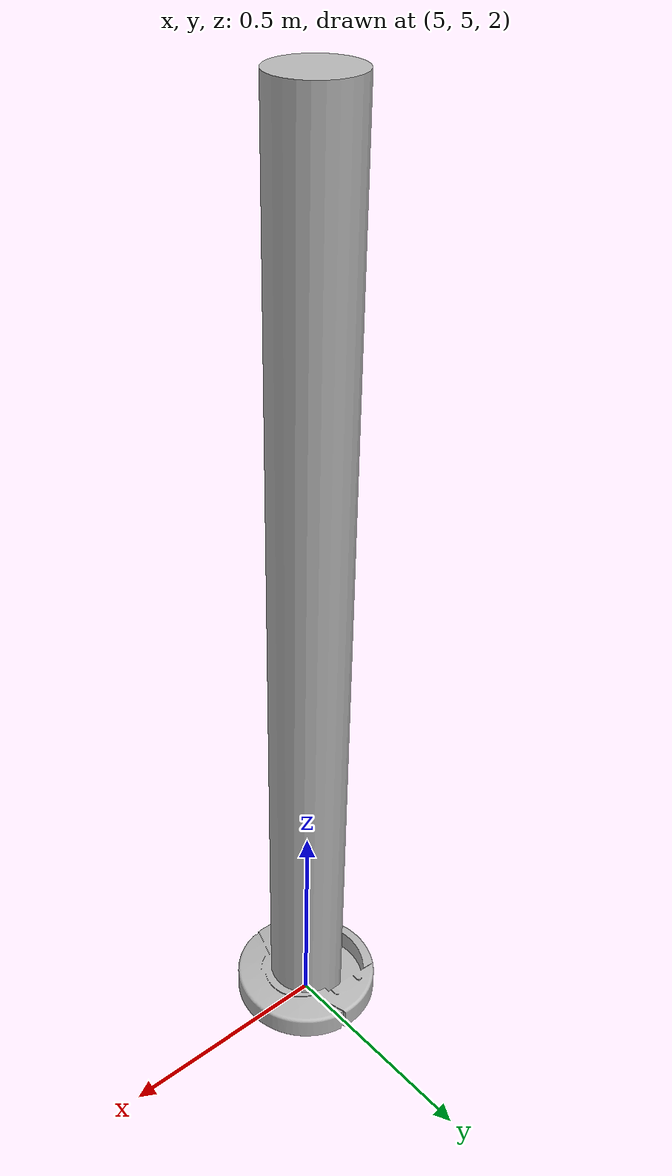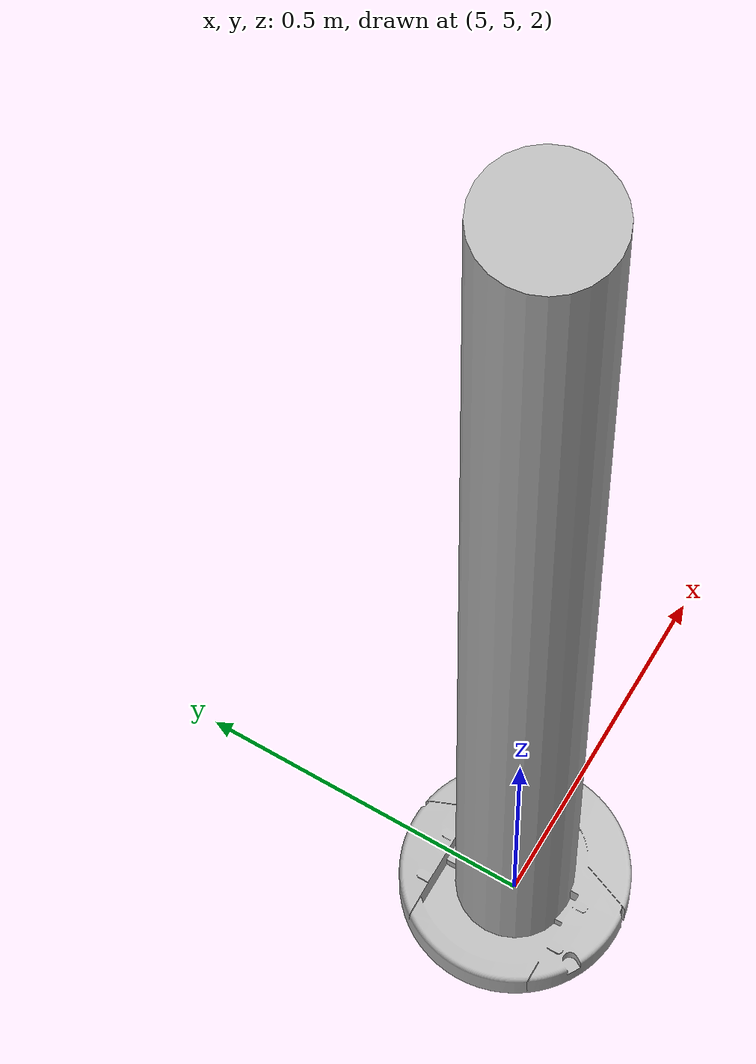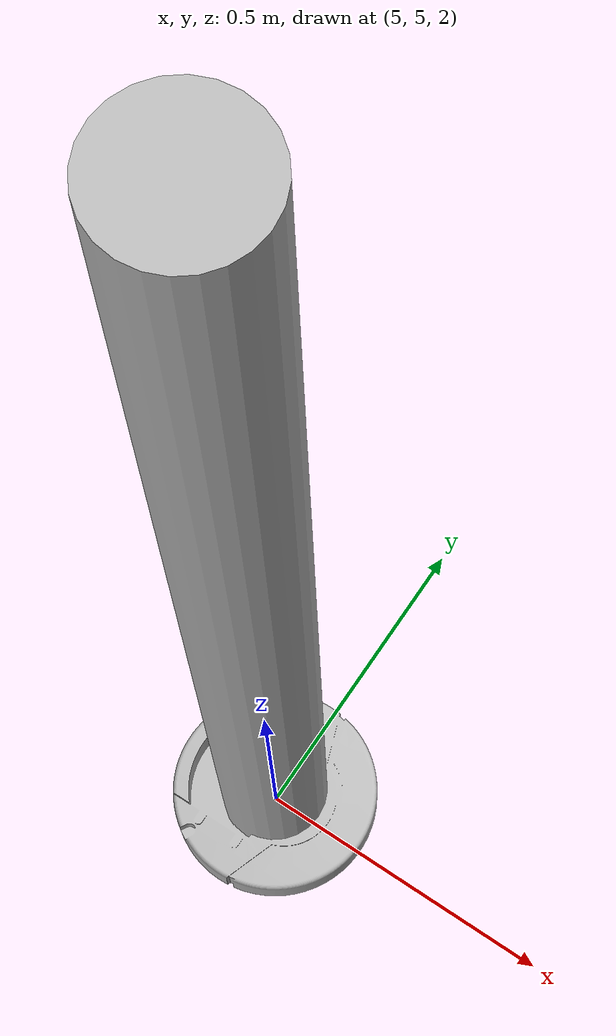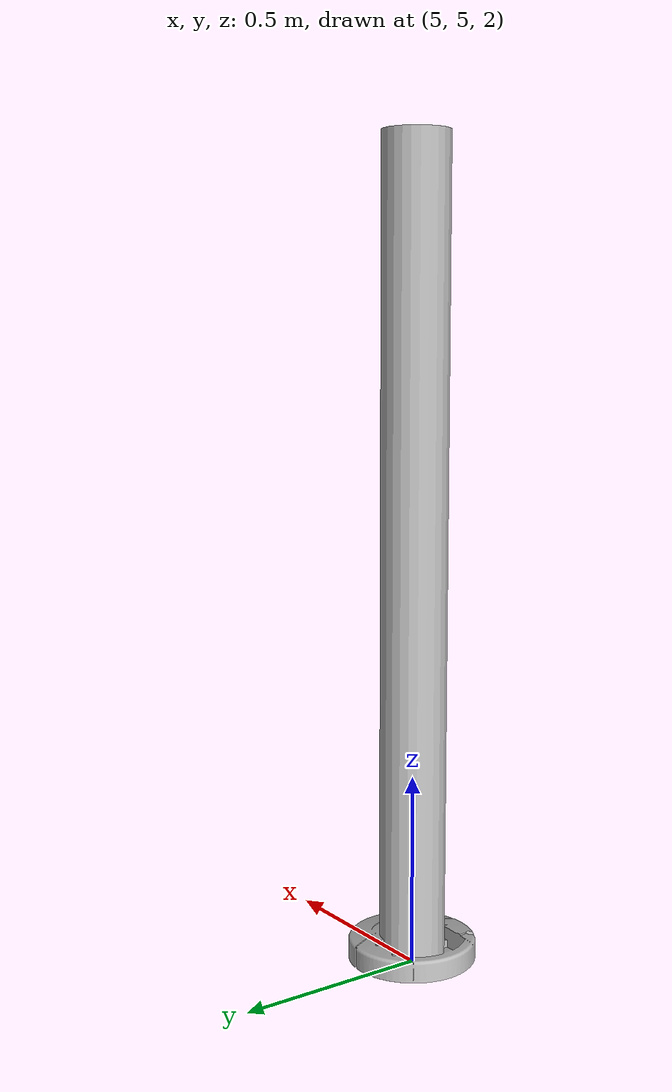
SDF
<?xml version="1.0" ?>
<sdf version="1.5">
  <model name="obstacle_create">
    <!-- Will the physics engine move this platform -->
    <static>false</static>

    <!-- Initial pose -->
    <pose>5 5 2  0 0 0</pose>

    <link name="base">
     <inertial>
        <mass>1.680</mass>
      </inertial>
      <collision name="base_collision">
        <pose>0 0 0.047800 0 0 0</pose>
        <geometry>
          <cylinder>
            <radius>0.16495</radius>
            <length>0.061163</length>
          </cylinder>
        </geometry>
      </collision>
      <visual name="base_visual">
        <pose>0 0 0.047800 0 0 0</pose>
        <geometry>
          <mesh>
            <uri>model://create/meshes/create_body.dae</uri>
          </mesh>
        </geometry>
      </visual>
	<collision name="bar_collision">
        <pose>0 0 1.05 0 0 0</pose>
        <geometry>
          <cylinder>
            <radius>0.08495</radius>
            <length>2.1</length>
          </cylinder>
        </geometry>
      </collision>
      <visual name="bar_visual">
        <pose>0 0 1.05 0 0 0</pose>
      <geometry>
          <cylinder>
            <radius>0.08495</radius>
            <length>2.1</length>
          </cylinder>
        </geometry>
      </visual>

    </link>

 <!-- Quadrotor dynamics and control -->
    <plugin name="UGVOB" filename="libsim_ugv_ob.so">

      <!-- Everything will be applied to this link -->
      <link>base</link>

      <!-- Propulsion -->
      <groundforce>
        <dynamics>
          <low_throttle>300</low_throttle>
          <max_angvel>2.617993877991494</max_angvel>
          <pq0>-3.25060e-04</pq0>
          <pq1>1.79797e+02</pq1>
          <pq2>-24.3536</pq2>
          <r0>-4.81783e-03</r0>
          <r1>-5.08944</r1>
          <Cth0>6.63881e-01</Cth0>
          <Cth1>7.44649e-04</Cth1>
          <Cth2>2.39855e-06</Cth2>
          <Cvb0>-18.0007</Cvb0>
          <Cvb1>4.23754</Cvb1>
          <tau0>3.07321</tau0>
          <tau1>46.8004</tau1>
        </dynamics>
        <control>
          <roll>
            <scale>-2291.83118052329</scale>
            <min>-0.1</min>
            <max> 0.1</max>
          </roll>
          <pitch>
            <scale>-2291.83118052329</scale>
            <min>-0.1</min>
            <max> 0.1</max>
          </pitch>
          <yaw>
            <scale>-460.597254433196</scale>
            <min>-4.5</min>
            <max> 4.5</max>
          </yaw>
          <throttle>
            <scale>4097</scale>
            <min>0.0</min>
            <max>1.0</max>
          </throttle>
          <voltage>
            <scale>1.0</scale>
            <min> 9.0</min>
            <max>12.0</max>
          </voltage>
        </control>
        <errors>
          <force><white><sigma>0.2</sigma></white></force>
          <torque><white><sigma>0.2</sigma></white></torque>
        </errors>
      </groundforce>

      <!-- Energy parameters -->
      <energy>
        <remaining>6000</remaining>
        <consumption>
          <base>0.1</base>
          <flight>6.6</flight>
        </consumption>
        <limits>
          <warn>1000</warn>
          <land>100</land>
        </limits>
        <errors>
          <consumption><white><sigma>0.002</sigma></white></consumption>
        </errors>
      </energy>

      <!-- Drag parameters -->
      <aerodynamics>
        <shear>
          <ma>0.05</ma>
          <z0>0.15</z0>
        </shear>
        <drag>
          <kuv>-4.97391e-01</kuv>
          <kw>-1.35341</kw>
        </drag>
        <errors>
          <turbulence><dryden></dryden></turbulence>
        </errors>
      </aerodynamics>

      <!-- Altimeter parameters -->
      <altimeter>
        <errors>
          <altitude><ou><beta>300</beta><sigma>0.003</sigma></ou></altitude>
        </errors>
      </altimeter>

      <!-- Compass parameters -->
      <compass>
        <errors>
          <magnetic><white><sigma>0.02</sigma></white></magnetic>
        </errors>
      </compass>

      <!-- GNSS parameters -->
      <gnss>
        <solver>
          <minelevation>15</minelevation>
          <nsiterations>10</nsiterations>
          <errtolerance>3.e-7</errtolerance>
          <gps>
            <use>true</use>
            <ion>false</ion>
            <tro>false</tro>
            <eph>false</eph>
            <clk>false</clk>
          </gps>
          <glo>
            <use>false</use>
            <ion>false</ion>
            <tro>false</tro>
            <eph>false</eph>
            <clk>false</clk>
          </glo>
        </solver>
        <errors>
          <clock><white><sigma>0.02</sigma></white></clock>
        </errors>
      </gnss>

      <!-- IMU parameters -->
      <imu>
        <errors>
          <linacc><white><sigma>0.0025</sigma></white></linacc>
          <angvel><white><sigma>0.0002</sigma></white></angvel>
        </errors>
      </imu>

      <!-- Orientation parameters -->
      <orientation>
        <errors>
          <orientation><ou><beta>0.01</beta><sigma>0.0005</sigma></ou></orientation>
        </errors>
      </orientation>

    </plugin>

  </model>
</sdf>
